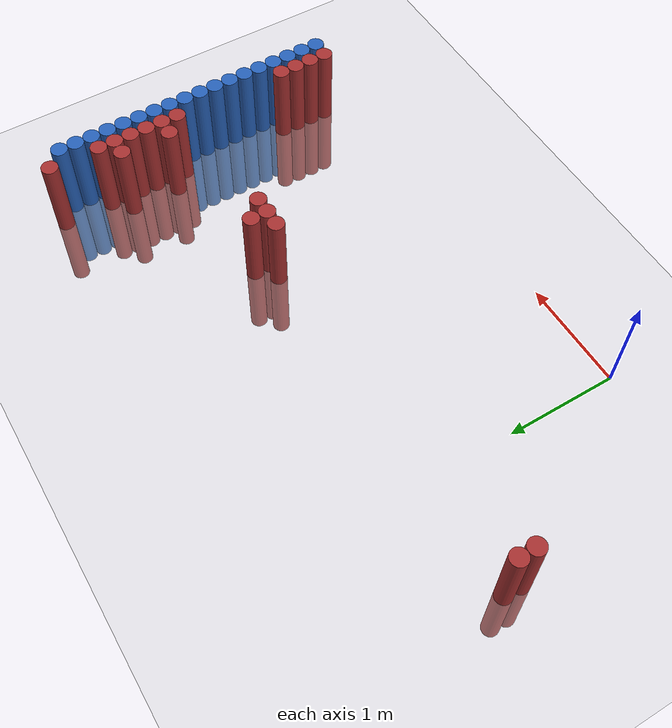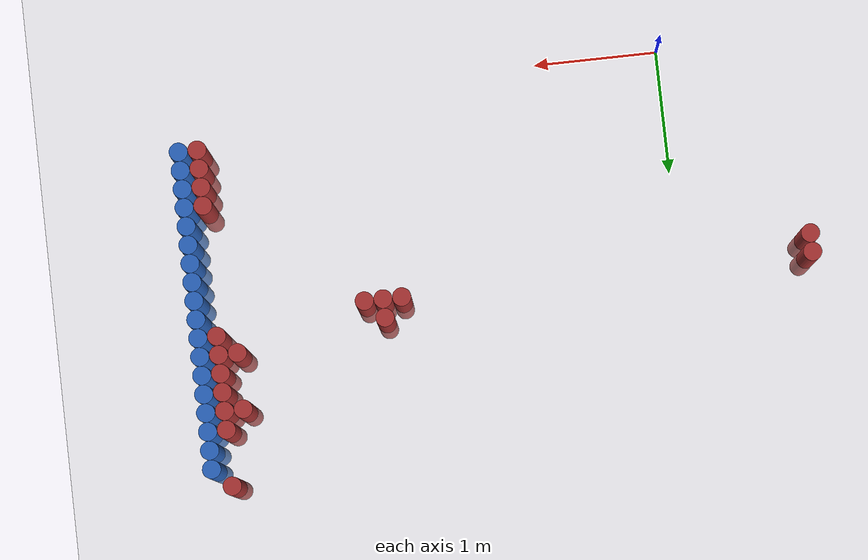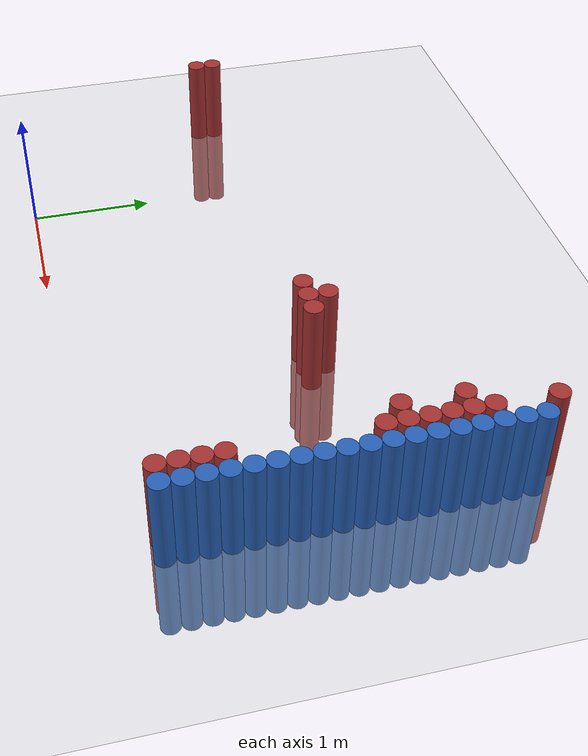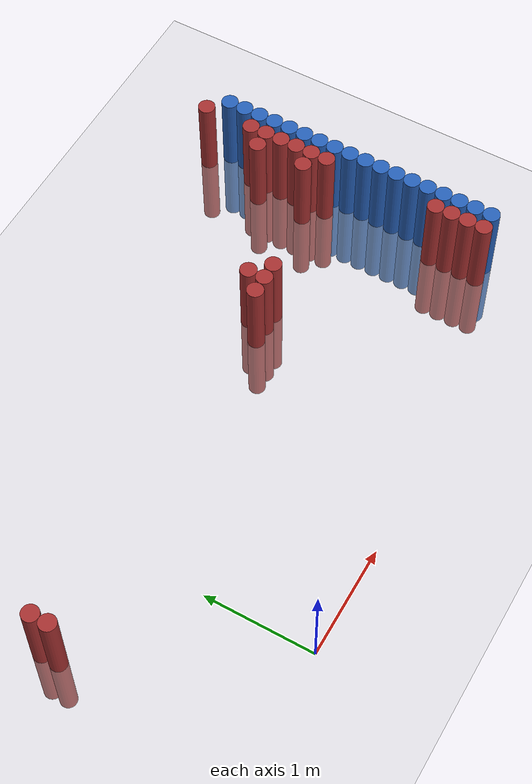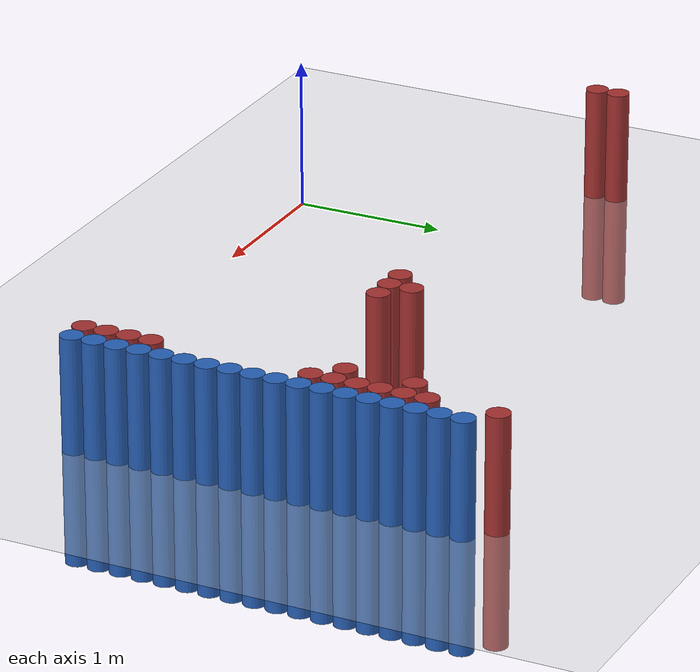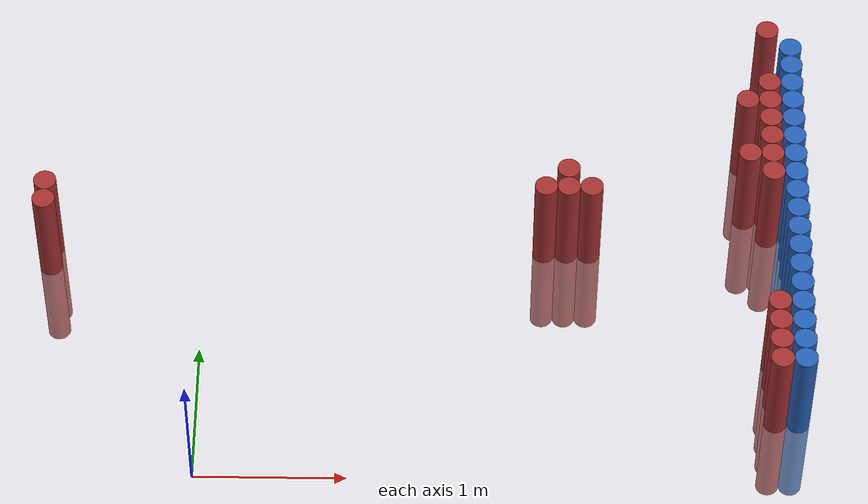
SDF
<sdf version="1.6">
 <world name="default">
  <model name="ground_plane">
   <static>1</static>
   <link name="link">
    <collision name="collision">
     <geometry><plane><normal>0 0 1</normal><size>100 100</size></plane></geometry>
     <surface><friction><ode><mu>100</mu><mu2>50</mu2></ode></friction></surface>
    </collision>
    <visual name="visual">
     <cast_shadows>0</cast_shadows>
     <geometry><plane><normal>0 0 1</normal><size>100 100</size></plane></geometry>
     <material>
      <script><uri>file://media/materials/scripts/gazebo.material</uri><name>Gazebo/Grey</name></script>
     </material>
    </visual>
   </link>
  </model>
  <model name="unit_cylinder_122">
   <static>1</static>
   <pose>3.925000 0.625000 0.000000 0.000000 0.000000 0.000000</pose>
   <link name="link">
    <inertial>
     <mass>1</mass>
     <inertia><ixx>0.145833</ixx><ixy>0</ixy><ixz>0</ixz><iyy>0.145833</iyy><iyz>0</iyz><izz>0.125</izz></inertia>
    </inertial>
    <collision name="collision">
     <geometry><cylinder><radius>0.075000</radius><length>1.5</length></cylinder></geometry>
    </collision>
    <visual name="visual">
     <geometry><cylinder><radius>0.075000</radius><length>1.5</length></cylinder></geometry>
     <material>
      <ambient>0.152000 0.379000 0.720000 1</ambient>
      <diffuse>0.152000 0.379000 0.720000 1</diffuse>
     </material>
     <material>
      <script><name>Gazebo/Grey</name><uri>file://media/materials/scripts/gazebo.material</uri></script>
     </material>
    </visual>
   </link>
  </model>
  <model name="unit_cylinder_124">
   <static>1</static>
   <pose>3.925000 0.775000 0.000000 0.000000 0.000000 0.000000</pose>
   <link name="link">
    <inertial>
     <mass>1</mass>
     <inertia><ixx>0.145833</ixx><ixy>0</ixy><ixz>0</ixz><iyy>0.145833</iyy><iyz>0</iyz><izz>0.125</izz></inertia>
    </inertial>
    <collision name="collision">
     <geometry><cylinder><radius>0.075000</radius><length>1.5</length></cylinder></geometry>
    </collision>
    <visual name="visual">
     <geometry><cylinder><radius>0.075000</radius><length>1.5</length></cylinder></geometry>
     <material>
      <ambient>0.152000 0.379000 0.720000 1</ambient>
      <diffuse>0.152000 0.379000 0.720000 1</diffuse>
     </material>
     <material>
      <script><name>Gazebo/Grey</name><uri>file://media/materials/scripts/gazebo.material</uri></script>
     </material>
    </visual>
   </link>
  </model>
  <model name="unit_cylinder_126">
   <static>1</static>
   <pose>3.925000 0.925000 0.000000 0.000000 0.000000 0.000000</pose>
   <link name="link">
    <inertial>
     <mass>1</mass>
     <inertia><ixx>0.145833</ixx><ixy>0</ixy><ixz>0</ixz><iyy>0.145833</iyy><iyz>0</iyz><izz>0.125</izz></inertia>
    </inertial>
    <collision name="collision">
     <geometry><cylinder><radius>0.075000</radius><length>1.5</length></cylinder></geometry>
    </collision>
    <visual name="visual">
     <geometry><cylinder><radius>0.075000</radius><length>1.5</length></cylinder></geometry>
     <material>
      <ambient>0.152000 0.379000 0.720000 1</ambient>
      <diffuse>0.152000 0.379000 0.720000 1</diffuse>
     </material>
     <material>
      <script><name>Gazebo/Grey</name><uri>file://media/materials/scripts/gazebo.material</uri></script>
     </material>
    </visual>
   </link>
  </model>
  <model name="unit_cylinder_128">
   <static>1</static>
   <pose>3.925000 1.075000 0.000000 0.000000 0.000000 0.000000</pose>
   <link name="link">
    <inertial>
     <mass>1</mass>
     <inertia><ixx>0.145833</ixx><ixy>0</ixy><ixz>0</ixz><iyy>0.145833</iyy><iyz>0</iyz><izz>0.125</izz></inertia>
    </inertial>
    <collision name="collision">
     <geometry><cylinder><radius>0.075000</radius><length>1.5</length></cylinder></geometry>
    </collision>
    <visual name="visual">
     <geometry><cylinder><radius>0.075000</radius><length>1.5</length></cylinder></geometry>
     <material>
      <ambient>0.152000 0.379000 0.720000 1</ambient>
      <diffuse>0.152000 0.379000 0.720000 1</diffuse>
     </material>
     <material>
      <script><name>Gazebo/Grey</name><uri>file://media/materials/scripts/gazebo.material</uri></script>
     </material>
    </visual>
   </link>
  </model>
  <model name="unit_cylinder_130">
   <static>1</static>
   <pose>3.925000 1.225000 0.000000 0.000000 0.000000 0.000000</pose>
   <link name="link">
    <inertial>
     <mass>1</mass>
     <inertia><ixx>0.145833</ixx><ixy>0</ixy><ixz>0</ixz><iyy>0.145833</iyy><iyz>0</iyz><izz>0.125</izz></inertia>
    </inertial>
    <collision name="collision">
     <geometry><cylinder><radius>0.075000</radius><length>1.5</length></cylinder></geometry>
    </collision>
    <visual name="visual">
     <geometry><cylinder><radius>0.075000</radius><length>1.5</length></cylinder></geometry>
     <material>
      <ambient>0.152000 0.379000 0.720000 1</ambient>
      <diffuse>0.152000 0.379000 0.720000 1</diffuse>
     </material>
     <material>
      <script><name>Gazebo/Grey</name><uri>file://media/materials/scripts/gazebo.material</uri></script>
     </material>
    </visual>
   </link>
  </model>
  <model name="unit_cylinder_132">
   <static>1</static>
   <pose>3.925000 1.375000 0.000000 0.000000 0.000000 0.000000</pose>
   <link name="link">
    <inertial>
     <mass>1</mass>
     <inertia><ixx>0.145833</ixx><ixy>0</ixy><ixz>0</ixz><iyy>0.145833</iyy><iyz>0</iyz><izz>0.125</izz></inertia>
    </inertial>
    <collision name="collision">
     <geometry><cylinder><radius>0.075000</radius><length>1.5</length></cylinder></geometry>
    </collision>
    <visual name="visual">
     <geometry><cylinder><radius>0.075000</radius><length>1.5</length></cylinder></geometry>
     <material>
      <ambient>0.152000 0.379000 0.720000 1</ambient>
      <diffuse>0.152000 0.379000 0.720000 1</diffuse>
     </material>
     <material>
      <script><name>Gazebo/Grey</name><uri>file://media/materials/scripts/gazebo.material</uri></script>
     </material>
    </visual>
   </link>
  </model>
  <model name="unit_cylinder_134">
   <static>1</static>
   <pose>3.925000 1.525000 0.000000 0.000000 0.000000 0.000000</pose>
   <link name="link">
    <inertial>
     <mass>1</mass>
     <inertia><ixx>0.145833</ixx><ixy>0</ixy><ixz>0</ixz><iyy>0.145833</iyy><iyz>0</iyz><izz>0.125</izz></inertia>
    </inertial>
    <collision name="collision">
     <geometry><cylinder><radius>0.075000</radius><length>1.5</length></cylinder></geometry>
    </collision>
    <visual name="visual">
     <geometry><cylinder><radius>0.075000</radius><length>1.5</length></cylinder></geometry>
     <material>
      <ambient>0.152000 0.379000 0.720000 1</ambient>
      <diffuse>0.152000 0.379000 0.720000 1</diffuse>
     </material>
     <material>
      <script><name>Gazebo/Grey</name><uri>file://media/materials/scripts/gazebo.material</uri></script>
     </material>
    </visual>
   </link>
  </model>
  <model name="unit_cylinder_136">
   <static>1</static>
   <pose>3.925000 1.675000 0.000000 0.000000 0.000000 0.000000</pose>
   <link name="link">
    <inertial>
     <mass>1</mass>
     <inertia><ixx>0.145833</ixx><ixy>0</ixy><ixz>0</ixz><iyy>0.145833</iyy><iyz>0</iyz><izz>0.125</izz></inertia>
    </inertial>
    <collision name="collision">
     <geometry><cylinder><radius>0.075000</radius><length>1.5</length></cylinder></geometry>
    </collision>
    <visual name="visual">
     <geometry><cylinder><radius>0.075000</radius><length>1.5</length></cylinder></geometry>
     <material>
      <ambient>0.152000 0.379000 0.720000 1</ambient>
      <diffuse>0.152000 0.379000 0.720000 1</diffuse>
     </material>
     <material>
      <script><name>Gazebo/Grey</name><uri>file://media/materials/scripts/gazebo.material</uri></script>
     </material>
    </visual>
   </link>
  </model>
  <model name="unit_cylinder_138">
   <static>1</static>
   <pose>3.925000 1.825000 0.000000 0.000000 0.000000 0.000000</pose>
   <link name="link">
    <inertial>
     <mass>1</mass>
     <inertia><ixx>0.145833</ixx><ixy>0</ixy><ixz>0</ixz><iyy>0.145833</iyy><iyz>0</iyz><izz>0.125</izz></inertia>
    </inertial>
    <collision name="collision">
     <geometry><cylinder><radius>0.075000</radius><length>1.5</length></cylinder></geometry>
    </collision>
    <visual name="visual">
     <geometry><cylinder><radius>0.075000</radius><length>1.5</length></cylinder></geometry>
     <material>
      <ambient>0.152000 0.379000 0.720000 1</ambient>
      <diffuse>0.152000 0.379000 0.720000 1</diffuse>
     </material>
     <material>
      <script><name>Gazebo/Grey</name><uri>file://media/materials/scripts/gazebo.material</uri></script>
     </material>
    </visual>
   </link>
  </model>
  <model name="unit_cylinder_140">
   <static>1</static>
   <pose>3.925000 1.975000 0.000000 0.000000 0.000000 0.000000</pose>
   <link name="link">
    <inertial>
     <mass>1</mass>
     <inertia><ixx>0.145833</ixx><ixy>0</ixy><ixz>0</ixz><iyy>0.145833</iyy><iyz>0</iyz><izz>0.125</izz></inertia>
    </inertial>
    <collision name="collision">
     <geometry><cylinder><radius>0.075000</radius><length>1.5</length></cylinder></geometry>
    </collision>
    <visual name="visual">
     <geometry><cylinder><radius>0.075000</radius><length>1.5</length></cylinder></geometry>
     <material>
      <ambient>0.152000 0.379000 0.720000 1</ambient>
      <diffuse>0.152000 0.379000 0.720000 1</diffuse>
     </material>
     <material>
      <script><name>Gazebo/Grey</name><uri>file://media/materials/scripts/gazebo.material</uri></script>
     </material>
    </visual>
   </link>
  </model>
  <model name="unit_cylinder_142">
   <static>1</static>
   <pose>3.925000 2.125000 0.000000 0.000000 0.000000 0.000000</pose>
   <link name="link">
    <inertial>
     <mass>1</mass>
     <inertia><ixx>0.145833</ixx><ixy>0</ixy><ixz>0</ixz><iyy>0.145833</iyy><iyz>0</iyz><izz>0.125</izz></inertia>
    </inertial>
    <collision name="collision">
     <geometry><cylinder><radius>0.075000</radius><length>1.5</length></cylinder></geometry>
    </collision>
    <visual name="visual">
     <geometry><cylinder><radius>0.075000</radius><length>1.5</length></cylinder></geometry>
     <material>
      <ambient>0.152000 0.379000 0.720000 1</ambient>
      <diffuse>0.152000 0.379000 0.720000 1</diffuse>
     </material>
     <material>
      <script><name>Gazebo/Grey</name><uri>file://media/materials/scripts/gazebo.material</uri></script>
     </material>
    </visual>
   </link>
  </model>
  <model name="unit_cylinder_144">
   <static>1</static>
   <pose>3.925000 2.275000 0.000000 0.000000 0.000000 0.000000</pose>
   <link name="link">
    <inertial>
     <mass>1</mass>
     <inertia><ixx>0.145833</ixx><ixy>0</ixy><ixz>0</ixz><iyy>0.145833</iyy><iyz>0</iyz><izz>0.125</izz></inertia>
    </inertial>
    <collision name="collision">
     <geometry><cylinder><radius>0.075000</radius><length>1.5</length></cylinder></geometry>
    </collision>
    <visual name="visual">
     <geometry><cylinder><radius>0.075000</radius><length>1.5</length></cylinder></geometry>
     <material>
      <ambient>0.152000 0.379000 0.720000 1</ambient>
      <diffuse>0.152000 0.379000 0.720000 1</diffuse>
     </material>
     <material>
      <script><name>Gazebo/Grey</name><uri>file://media/materials/scripts/gazebo.material</uri></script>
     </material>
    </visual>
   </link>
  </model>
  <model name="unit_cylinder_146">
   <static>1</static>
   <pose>3.925000 2.425000 0.000000 0.000000 0.000000 0.000000</pose>
   <link name="link">
    <inertial>
     <mass>1</mass>
     <inertia><ixx>0.145833</ixx><ixy>0</ixy><ixz>0</ixz><iyy>0.145833</iyy><iyz>0</iyz><izz>0.125</izz></inertia>
    </inertial>
    <collision name="collision">
     <geometry><cylinder><radius>0.075000</radius><length>1.5</length></cylinder></geometry>
    </collision>
    <visual name="visual">
     <geometry><cylinder><radius>0.075000</radius><length>1.5</length></cylinder></geometry>
     <material>
      <ambient>0.152000 0.379000 0.720000 1</ambient>
      <diffuse>0.152000 0.379000 0.720000 1</diffuse>
     </material>
     <material>
      <script><name>Gazebo/Grey</name><uri>file://media/materials/scripts/gazebo.material</uri></script>
     </material>
    </visual>
   </link>
  </model>
  <model name="unit_cylinder_148">
   <static>1</static>
   <pose>3.925000 2.575000 0.000000 0.000000 0.000000 0.000000</pose>
   <link name="link">
    <inertial>
     <mass>1</mass>
     <inertia><ixx>0.145833</ixx><ixy>0</ixy><ixz>0</ixz><iyy>0.145833</iyy><iyz>0</iyz><izz>0.125</izz></inertia>
    </inertial>
    <collision name="collision">
     <geometry><cylinder><radius>0.075000</radius><length>1.5</length></cylinder></geometry>
    </collision>
    <visual name="visual">
     <geometry><cylinder><radius>0.075000</radius><length>1.5</length></cylinder></geometry>
     <material>
      <ambient>0.152000 0.379000 0.720000 1</ambient>
      <diffuse>0.152000 0.379000 0.720000 1</diffuse>
     </material>
     <material>
      <script><name>Gazebo/Grey</name><uri>file://media/materials/scripts/gazebo.material</uri></script>
     </material>
    </visual>
   </link>
  </model>
  <model name="unit_cylinder_150">
   <static>1</static>
   <pose>3.925000 2.725000 0.000000 0.000000 0.000000 0.000000</pose>
   <link name="link">
    <inertial>
     <mass>1</mass>
     <inertia><ixx>0.145833</ixx><ixy>0</ixy><ixz>0</ixz><iyy>0.145833</iyy><iyz>0</iyz><izz>0.125</izz></inertia>
    </inertial>
    <collision name="collision">
     <geometry><cylinder><radius>0.075000</radius><length>1.5</length></cylinder></geometry>
    </collision>
    <visual name="visual">
     <geometry><cylinder><radius>0.075000</radius><length>1.5</length></cylinder></geometry>
     <material>
      <ambient>0.152000 0.379000 0.720000 1</ambient>
      <diffuse>0.152000 0.379000 0.720000 1</diffuse>
     </material>
     <material>
      <script><name>Gazebo/Grey</name><uri>file://media/materials/scripts/gazebo.material</uri></script>
     </material>
    </visual>
   </link>
  </model>
  <model name="unit_cylinder_152">
   <static>1</static>
   <pose>3.925000 2.875000 0.000000 0.000000 0.000000 0.000000</pose>
   <link name="link">
    <inertial>
     <mass>1</mass>
     <inertia><ixx>0.145833</ixx><ixy>0</ixy><ixz>0</ixz><iyy>0.145833</iyy><iyz>0</iyz><izz>0.125</izz></inertia>
    </inertial>
    <collision name="collision">
     <geometry><cylinder><radius>0.075000</radius><length>1.5</length></cylinder></geometry>
    </collision>
    <visual name="visual">
     <geometry><cylinder><radius>0.075000</radius><length>1.5</length></cylinder></geometry>
     <material>
      <ambient>0.152000 0.379000 0.720000 1</ambient>
      <diffuse>0.152000 0.379000 0.720000 1</diffuse>
     </material>
     <material>
      <script><name>Gazebo/Grey</name><uri>file://media/materials/scripts/gazebo.material</uri></script>
     </material>
    </visual>
   </link>
  </model>
  <model name="unit_cylinder_154">
   <static>1</static>
   <pose>3.925000 3.025000 0.000000 0.000000 0.000000 0.000000</pose>
   <link name="link">
    <inertial>
     <mass>1</mass>
     <inertia><ixx>0.145833</ixx><ixy>0</ixy><ixz>0</ixz><iyy>0.145833</iyy><iyz>0</iyz><izz>0.125</izz></inertia>
    </inertial>
    <collision name="collision">
     <geometry><cylinder><radius>0.075000</radius><length>1.5</length></cylinder></geometry>
    </collision>
    <visual name="visual">
     <geometry><cylinder><radius>0.075000</radius><length>1.5</length></cylinder></geometry>
     <material>
      <ambient>0.152000 0.379000 0.720000 1</ambient>
      <diffuse>0.152000 0.379000 0.720000 1</diffuse>
     </material>
     <material>
      <script><name>Gazebo/Grey</name><uri>file://media/materials/scripts/gazebo.material</uri></script>
     </material>
    </visual>
   </link>
  </model>
  <model name="unit_cylinder_292">
   <static>1</static>
   <pose>-1.025000 1.675000 0.000000 0.000000 0.000000 0.000000</pose>
   <link name="link">
    <inertial>
     <mass>1</mass>
     <inertia><ixx>0.145833</ixx><ixy>0</ixy><ixz>0</ixz><iyy>0.145833</iyy><iyz>0</iyz><izz>0.125</izz></inertia>
    </inertial>
    <collision name="collision">
     <geometry><cylinder><radius>0.075000</radius><length>1.5</length></cylinder></geometry>
    </collision>
    <visual name="visual">
     <geometry><cylinder><radius>0.075000</radius><length>1.5</length></cylinder></geometry>
     <material>
      <ambient>0.648000 0.192000 0.192000 1</ambient>
      <diffuse>0.648000 0.192000 0.192000 1</diffuse>
     </material>
     <material>
      <script><name>Gazebo/Grey</name><uri>file://media/materials/scripts/gazebo.material</uri></script>
     </material>
    </visual>
   </link>
  </model>
  <model name="unit_cylinder_293">
   <static>1</static>
   <pose>-1.025000 1.825000 0.000000 0.000000 0.000000 0.000000</pose>
   <link name="link">
    <inertial>
     <mass>1</mass>
     <inertia><ixx>0.145833</ixx><ixy>0</ixy><ixz>0</ixz><iyy>0.145833</iyy><iyz>0</iyz><izz>0.125</izz></inertia>
    </inertial>
    <collision name="collision">
     <geometry><cylinder><radius>0.075000</radius><length>1.5</length></cylinder></geometry>
    </collision>
    <visual name="visual">
     <geometry><cylinder><radius>0.075000</radius><length>1.5</length></cylinder></geometry>
     <material>
      <ambient>0.648000 0.192000 0.192000 1</ambient>
      <diffuse>0.648000 0.192000 0.192000 1</diffuse>
     </material>
     <material>
      <script><name>Gazebo/Grey</name><uri>file://media/materials/scripts/gazebo.material</uri></script>
     </material>
    </visual>
   </link>
  </model>
  <model name="unit_cylinder_304">
   <static>1</static>
   <pose>2.275000 1.825000 0.000000 0.000000 0.000000 0.000000</pose>
   <link name="link">
    <inertial>
     <mass>1</mass>
     <inertia><ixx>0.145833</ixx><ixy>0</ixy><ixz>0</ixz><iyy>0.145833</iyy><iyz>0</iyz><izz>0.125</izz></inertia>
    </inertial>
    <collision name="collision">
     <geometry><cylinder><radius>0.075000</radius><length>1.5</length></cylinder></geometry>
    </collision>
    <visual name="visual">
     <geometry><cylinder><radius>0.075000</radius><length>1.5</length></cylinder></geometry>
     <material>
      <ambient>0.648000 0.192000 0.192000 1</ambient>
      <diffuse>0.648000 0.192000 0.192000 1</diffuse>
     </material>
     <material>
      <script><name>Gazebo/Grey</name><uri>file://media/materials/scripts/gazebo.material</uri></script>
     </material>
    </visual>
   </link>
  </model>
  <model name="unit_cylinder_305">
   <static>1</static>
   <pose>2.425000 1.825000 0.000000 0.000000 0.000000 0.000000</pose>
   <link name="link">
    <inertial>
     <mass>1</mass>
     <inertia><ixx>0.145833</ixx><ixy>0</ixy><ixz>0</ixz><iyy>0.145833</iyy><iyz>0</iyz><izz>0.125</izz></inertia>
    </inertial>
    <collision name="collision">
     <geometry><cylinder><radius>0.075000</radius><length>1.5</length></cylinder></geometry>
    </collision>
    <visual name="visual">
     <geometry><cylinder><radius>0.075000</radius><length>1.5</length></cylinder></geometry>
     <material>
      <ambient>0.648000 0.192000 0.192000 1</ambient>
      <diffuse>0.648000 0.192000 0.192000 1</diffuse>
     </material>
     <material>
      <script><name>Gazebo/Grey</name><uri>file://media/materials/scripts/gazebo.material</uri></script>
     </material>
    </visual>
   </link>
  </model>
  <model name="unit_cylinder_306">
   <static>1</static>
   <pose>2.425000 1.975000 0.000000 0.000000 0.000000 0.000000</pose>
   <link name="link">
    <inertial>
     <mass>1</mass>
     <inertia><ixx>0.145833</ixx><ixy>0</ixy><ixz>0</ixz><iyy>0.145833</iyy><iyz>0</iyz><izz>0.125</izz></inertia>
    </inertial>
    <collision name="collision">
     <geometry><cylinder><radius>0.075000</radius><length>1.5</length></cylinder></geometry>
    </collision>
    <visual name="visual">
     <geometry><cylinder><radius>0.075000</radius><length>1.5</length></cylinder></geometry>
     <material>
      <ambient>0.648000 0.192000 0.192000 1</ambient>
      <diffuse>0.648000 0.192000 0.192000 1</diffuse>
     </material>
     <material>
      <script><name>Gazebo/Grey</name><uri>file://media/materials/scripts/gazebo.material</uri></script>
     </material>
    </visual>
   </link>
  </model>
  <model name="unit_cylinder_307">
   <static>1</static>
   <pose>2.575000 1.825000 0.000000 0.000000 0.000000 0.000000</pose>
   <link name="link">
    <inertial>
     <mass>1</mass>
     <inertia><ixx>0.145833</ixx><ixy>0</ixy><ixz>0</ixz><iyy>0.145833</iyy><iyz>0</iyz><izz>0.125</izz></inertia>
    </inertial>
    <collision name="collision">
     <geometry><cylinder><radius>0.075000</radius><length>1.5</length></cylinder></geometry>
    </collision>
    <visual name="visual">
     <geometry><cylinder><radius>0.075000</radius><length>1.5</length></cylinder></geometry>
     <material>
      <ambient>0.648000 0.192000 0.192000 1</ambient>
      <diffuse>0.648000 0.192000 0.192000 1</diffuse>
     </material>
     <material>
      <script><name>Gazebo/Grey</name><uri>file://media/materials/scripts/gazebo.material</uri></script>
     </material>
    </visual>
   </link>
  </model>
  <model name="unit_cylinder_316">
   <static>1</static>
   <pose>3.625000 2.125000 0.000000 0.000000 0.000000 0.000000</pose>
   <link name="link">
    <inertial>
     <mass>1</mass>
     <inertia><ixx>0.145833</ixx><ixy>0</ixy><ixz>0</ixz><iyy>0.145833</iyy><iyz>0</iyz><izz>0.125</izz></inertia>
    </inertial>
    <collision name="collision">
     <geometry><cylinder><radius>0.075000</radius><length>1.5</length></cylinder></geometry>
    </collision>
    <visual name="visual">
     <geometry><cylinder><radius>0.075000</radius><length>1.5</length></cylinder></geometry>
     <material>
      <ambient>0.648000 0.192000 0.192000 1</ambient>
      <diffuse>0.648000 0.192000 0.192000 1</diffuse>
     </material>
     <material>
      <script><name>Gazebo/Grey</name><uri>file://media/materials/scripts/gazebo.material</uri></script>
     </material>
    </visual>
   </link>
  </model>
  <model name="unit_cylinder_317">
   <static>1</static>
   <pose>3.625000 2.575000 0.000000 0.000000 0.000000 0.000000</pose>
   <link name="link">
    <inertial>
     <mass>1</mass>
     <inertia><ixx>0.145833</ixx><ixy>0</ixy><ixz>0</ixz><iyy>0.145833</iyy><iyz>0</iyz><izz>0.125</izz></inertia>
    </inertial>
    <collision name="collision">
     <geometry><cylinder><radius>0.075000</radius><length>1.5</length></cylinder></geometry>
    </collision>
    <visual name="visual">
     <geometry><cylinder><radius>0.075000</radius><length>1.5</length></cylinder></geometry>
     <material>
      <ambient>0.648000 0.192000 0.192000 1</ambient>
      <diffuse>0.648000 0.192000 0.192000 1</diffuse>
     </material>
     <material>
      <script><name>Gazebo/Grey</name><uri>file://media/materials/scripts/gazebo.material</uri></script>
     </material>
    </visual>
   </link>
  </model>
  <model name="unit_cylinder_318">
   <static>1</static>
   <pose>3.775000 0.475000 0.000000 0.000000 0.000000 0.000000</pose>
   <link name="link">
    <inertial>
     <mass>1</mass>
     <inertia><ixx>0.145833</ixx><ixy>0</ixy><ixz>0</ixz><iyy>0.145833</iyy><iyz>0</iyz><izz>0.125</izz></inertia>
    </inertial>
    <collision name="collision">
     <geometry><cylinder><radius>0.075000</radius><length>1.5</length></cylinder></geometry>
    </collision>
    <visual name="visual">
     <geometry><cylinder><radius>0.075000</radius><length>1.5</length></cylinder></geometry>
     <material>
      <ambient>0.648000 0.192000 0.192000 1</ambient>
      <diffuse>0.648000 0.192000 0.192000 1</diffuse>
     </material>
     <material>
      <script><name>Gazebo/Grey</name><uri>file://media/materials/scripts/gazebo.material</uri></script>
     </material>
    </visual>
   </link>
  </model>
  <model name="unit_cylinder_319">
   <static>1</static>
   <pose>3.775000 0.625000 0.000000 0.000000 0.000000 0.000000</pose>
   <link name="link">
    <inertial>
     <mass>1</mass>
     <inertia><ixx>0.145833</ixx><ixy>0</ixy><ixz>0</ixz><iyy>0.145833</iyy><iyz>0</iyz><izz>0.125</izz></inertia>
    </inertial>
    <collision name="collision">
     <geometry><cylinder><radius>0.075000</radius><length>1.5</length></cylinder></geometry>
    </collision>
    <visual name="visual">
     <geometry><cylinder><radius>0.075000</radius><length>1.5</length></cylinder></geometry>
     <material>
      <ambient>0.648000 0.192000 0.192000 1</ambient>
      <diffuse>0.648000 0.192000 0.192000 1</diffuse>
     </material>
     <material>
      <script><name>Gazebo/Grey</name><uri>file://media/materials/scripts/gazebo.material</uri></script>
     </material>
    </visual>
   </link>
  </model>
  <model name="unit_cylinder_320">
   <static>1</static>
   <pose>3.775000 0.775000 0.000000 0.000000 0.000000 0.000000</pose>
   <link name="link">
    <inertial>
     <mass>1</mass>
     <inertia><ixx>0.145833</ixx><ixy>0</ixy><ixz>0</ixz><iyy>0.145833</iyy><iyz>0</iyz><izz>0.125</izz></inertia>
    </inertial>
    <collision name="collision">
     <geometry><cylinder><radius>0.075000</radius><length>1.5</length></cylinder></geometry>
    </collision>
    <visual name="visual">
     <geometry><cylinder><radius>0.075000</radius><length>1.5</length></cylinder></geometry>
     <material>
      <ambient>0.648000 0.192000 0.192000 1</ambient>
      <diffuse>0.648000 0.192000 0.192000 1</diffuse>
     </material>
     <material>
      <script><name>Gazebo/Grey</name><uri>file://media/materials/scripts/gazebo.material</uri></script>
     </material>
    </visual>
   </link>
  </model>
  <model name="unit_cylinder_321">
   <static>1</static>
   <pose>3.775000 0.925000 0.000000 0.000000 0.000000 0.000000</pose>
   <link name="link">
    <inertial>
     <mass>1</mass>
     <inertia><ixx>0.145833</ixx><ixy>0</ixy><ixz>0</ixz><iyy>0.145833</iyy><iyz>0</iyz><izz>0.125</izz></inertia>
    </inertial>
    <collision name="collision">
     <geometry><cylinder><radius>0.075000</radius><length>1.5</length></cylinder></geometry>
    </collision>
    <visual name="visual">
     <geometry><cylinder><radius>0.075000</radius><length>1.5</length></cylinder></geometry>
     <material>
      <ambient>0.648000 0.192000 0.192000 1</ambient>
      <diffuse>0.648000 0.192000 0.192000 1</diffuse>
     </material>
     <material>
      <script><name>Gazebo/Grey</name><uri>file://media/materials/scripts/gazebo.material</uri></script>
     </material>
    </visual>
   </link>
  </model>
  <model name="unit_cylinder_322">
   <static>1</static>
   <pose>3.775000 1.975000 0.000000 0.000000 0.000000 0.000000</pose>
   <link name="link">
    <inertial>
     <mass>1</mass>
     <inertia><ixx>0.145833</ixx><ixy>0</ixy><ixz>0</ixz><iyy>0.145833</iyy><iyz>0</iyz><izz>0.125</izz></inertia>
    </inertial>
    <collision name="collision">
     <geometry><cylinder><radius>0.075000</radius><length>1.5</length></cylinder></geometry>
    </collision>
    <visual name="visual">
     <geometry><cylinder><radius>0.075000</radius><length>1.5</length></cylinder></geometry>
     <material>
      <ambient>0.648000 0.192000 0.192000 1</ambient>
      <diffuse>0.648000 0.192000 0.192000 1</diffuse>
     </material>
     <material>
      <script><name>Gazebo/Grey</name><uri>file://media/materials/scripts/gazebo.material</uri></script>
     </material>
    </visual>
   </link>
  </model>
  <model name="unit_cylinder_323">
   <static>1</static>
   <pose>3.775000 2.125000 0.000000 0.000000 0.000000 0.000000</pose>
   <link name="link">
    <inertial>
     <mass>1</mass>
     <inertia><ixx>0.145833</ixx><ixy>0</ixy><ixz>0</ixz><iyy>0.145833</iyy><iyz>0</iyz><izz>0.125</izz></inertia>
    </inertial>
    <collision name="collision">
     <geometry><cylinder><radius>0.075000</radius><length>1.5</length></cylinder></geometry>
    </collision>
    <visual name="visual">
     <geometry><cylinder><radius>0.075000</radius><length>1.5</length></cylinder></geometry>
     <material>
      <ambient>0.648000 0.192000 0.192000 1</ambient>
      <diffuse>0.648000 0.192000 0.192000 1</diffuse>
     </material>
     <material>
      <script><name>Gazebo/Grey</name><uri>file://media/materials/scripts/gazebo.material</uri></script>
     </material>
    </visual>
   </link>
  </model>
  <model name="unit_cylinder_324">
   <static>1</static>
   <pose>3.775000 2.275000 0.000000 0.000000 0.000000 0.000000</pose>
   <link name="link">
    <inertial>
     <mass>1</mass>
     <inertia><ixx>0.145833</ixx><ixy>0</ixy><ixz>0</ixz><iyy>0.145833</iyy><iyz>0</iyz><izz>0.125</izz></inertia>
    </inertial>
    <collision name="collision">
     <geometry><cylinder><radius>0.075000</radius><length>1.5</length></cylinder></geometry>
    </collision>
    <visual name="visual">
     <geometry><cylinder><radius>0.075000</radius><length>1.5</length></cylinder></geometry>
     <material>
      <ambient>0.648000 0.192000 0.192000 1</ambient>
      <diffuse>0.648000 0.192000 0.192000 1</diffuse>
     </material>
     <material>
      <script><name>Gazebo/Grey</name><uri>file://media/materials/scripts/gazebo.material</uri></script>
     </material>
    </visual>
   </link>
  </model>
  <model name="unit_cylinder_325">
   <static>1</static>
   <pose>3.775000 2.425000 0.000000 0.000000 0.000000 0.000000</pose>
   <link name="link">
    <inertial>
     <mass>1</mass>
     <inertia><ixx>0.145833</ixx><ixy>0</ixy><ixz>0</ixz><iyy>0.145833</iyy><iyz>0</iyz><izz>0.125</izz></inertia>
    </inertial>
    <collision name="collision">
     <geometry><cylinder><radius>0.075000</radius><length>1.5</length></cylinder></geometry>
    </collision>
    <visual name="visual">
     <geometry><cylinder><radius>0.075000</radius><length>1.5</length></cylinder></geometry>
     <material>
      <ambient>0.648000 0.192000 0.192000 1</ambient>
      <diffuse>0.648000 0.192000 0.192000 1</diffuse>
     </material>
     <material>
      <script><name>Gazebo/Grey</name><uri>file://media/materials/scripts/gazebo.material</uri></script>
     </material>
    </visual>
   </link>
  </model>
  <model name="unit_cylinder_326">
   <static>1</static>
   <pose>3.775000 2.575000 0.000000 0.000000 0.000000 0.000000</pose>
   <link name="link">
    <inertial>
     <mass>1</mass>
     <inertia><ixx>0.145833</ixx><ixy>0</ixy><ixz>0</ixz><iyy>0.145833</iyy><iyz>0</iyz><izz>0.125</izz></inertia>
    </inertial>
    <collision name="collision">
     <geometry><cylinder><radius>0.075000</radius><length>1.5</length></cylinder></geometry>
    </collision>
    <visual name="visual">
     <geometry><cylinder><radius>0.075000</radius><length>1.5</length></cylinder></geometry>
     <material>
      <ambient>0.648000 0.192000 0.192000 1</ambient>
      <diffuse>0.648000 0.192000 0.192000 1</diffuse>
     </material>
     <material>
      <script><name>Gazebo/Grey</name><uri>file://media/materials/scripts/gazebo.material</uri></script>
     </material>
    </visual>
   </link>
  </model>
  <model name="unit_cylinder_327">
   <static>1</static>
   <pose>3.775000 2.725000 0.000000 0.000000 0.000000 0.000000</pose>
   <link name="link">
    <inertial>
     <mass>1</mass>
     <inertia><ixx>0.145833</ixx><ixy>0</ixy><ixz>0</ixz><iyy>0.145833</iyy><iyz>0</iyz><izz>0.125</izz></inertia>
    </inertial>
    <collision name="collision">
     <geometry><cylinder><radius>0.075000</radius><length>1.5</length></cylinder></geometry>
    </collision>
    <visual name="visual">
     <geometry><cylinder><radius>0.075000</radius><length>1.5</length></cylinder></geometry>
     <material>
      <ambient>0.648000 0.192000 0.192000 1</ambient>
      <diffuse>0.648000 0.192000 0.192000 1</diffuse>
     </material>
     <material>
      <script><name>Gazebo/Grey</name><uri>file://media/materials/scripts/gazebo.material</uri></script>
     </material>
    </visual>
   </link>
  </model>
  <model name="unit_cylinder_328">
   <static>1</static>
   <pose>3.775000 3.175000 0.000000 0.000000 0.000000 0.000000</pose>
   <link name="link">
    <inertial>
     <mass>1</mass>
     <inertia><ixx>0.145833</ixx><ixy>0</ixy><ixz>0</ixz><iyy>0.145833</iyy><iyz>0</iyz><izz>0.125</izz></inertia>
    </inertial>
    <collision name="collision">
     <geometry><cylinder><radius>0.075000</radius><length>1.5</length></cylinder></geometry>
    </collision>
    <visual name="visual">
     <geometry><cylinder><radius>0.075000</radius><length>1.5</length></cylinder></geometry>
     <material>
      <ambient>0.648000 0.192000 0.192000 1</ambient>
      <diffuse>0.648000 0.192000 0.192000 1</diffuse>
     </material>
     <material>
      <script><name>Gazebo/Grey</name><uri>file://media/materials/scripts/gazebo.material</uri></script>
     </material>
    </visual>
   </link>
  </model>
  <model name="unit_cylinder_347">
   <static>1</static>
   <pose>3.925000 0.475000 0.000000 0.000000 0.000000 0.000000</pose>
   <link name="link">
    <inertial>
     <mass>1</mass>
     <inertia><ixx>0.145833</ixx><ixy>0</ixy><ixz>0</ixz><iyy>0.145833</iyy><iyz>0</iyz><izz>0.125</izz></inertia>
    </inertial>
    <collision name="collision">
     <geometry><cylinder><radius>0.075000</radius><length>1.5</length></cylinder></geometry>
    </collision>
    <visual name="visual">
     <geometry><cylinder><radius>0.075000</radius><length>1.5</length></cylinder></geometry>
     <material>
      <ambient>0.152000 0.379000 0.720000 1</ambient>
      <diffuse>0.152000 0.379000 0.720000 1</diffuse>
     </material>
     <material>
      <script><name>Gazebo/Grey</name><uri>file://media/materials/scripts/gazebo.material</uri></script>
     </material>
    </visual>
   </link>
  </model>
  <model name="unit_cylinder_348">
   <static>1</static>
   <pose>3.925000 0.625000 0.000000 0.000000 0.000000 0.000000</pose>
   <link name="link">
    <inertial>
     <mass>1</mass>
     <inertia><ixx>0.145833</ixx><ixy>0</ixy><ixz>0</ixz><iyy>0.145833</iyy><iyz>0</iyz><izz>0.125</izz></inertia>
    </inertial>
    <collision name="collision">
     <geometry><cylinder><radius>0.075000</radius><length>1.5</length></cylinder></geometry>
    </collision>
    <visual name="visual">
     <geometry><cylinder><radius>0.075000</radius><length>1.5</length></cylinder></geometry>
     <material>
      <ambient>0.152000 0.379000 0.720000 1</ambient>
      <diffuse>0.152000 0.379000 0.720000 1</diffuse>
     </material>
     <material>
      <script><name>Gazebo/Grey</name><uri>file://media/materials/scripts/gazebo.material</uri></script>
     </material>
    </visual>
   </link>
  </model>
  <model name="unit_cylinder_349">
   <static>1</static>
   <pose>3.925000 0.775000 0.000000 0.000000 0.000000 0.000000</pose>
   <link name="link">
    <inertial>
     <mass>1</mass>
     <inertia><ixx>0.145833</ixx><ixy>0</ixy><ixz>0</ixz><iyy>0.145833</iyy><iyz>0</iyz><izz>0.125</izz></inertia>
    </inertial>
    <collision name="collision">
     <geometry><cylinder><radius>0.075000</radius><length>1.5</length></cylinder></geometry>
    </collision>
    <visual name="visual">
     <geometry><cylinder><radius>0.075000</radius><length>1.5</length></cylinder></geometry>
     <material>
      <ambient>0.152000 0.379000 0.720000 1</ambient>
      <diffuse>0.152000 0.379000 0.720000 1</diffuse>
     </material>
     <material>
      <script><name>Gazebo/Grey</name><uri>file://media/materials/scripts/gazebo.material</uri></script>
     </material>
    </visual>
   </link>
  </model>
  <model name="unit_cylinder_350">
   <static>1</static>
   <pose>3.925000 0.925000 0.000000 0.000000 0.000000 0.000000</pose>
   <link name="link">
    <inertial>
     <mass>1</mass>
     <inertia><ixx>0.145833</ixx><ixy>0</ixy><ixz>0</ixz><iyy>0.145833</iyy><iyz>0</iyz><izz>0.125</izz></inertia>
    </inertial>
    <collision name="collision">
     <geometry><cylinder><radius>0.075000</radius><length>1.5</length></cylinder></geometry>
    </collision>
    <visual name="visual">
     <geometry><cylinder><radius>0.075000</radius><length>1.5</length></cylinder></geometry>
     <material>
      <ambient>0.152000 0.379000 0.720000 1</ambient>
      <diffuse>0.152000 0.379000 0.720000 1</diffuse>
     </material>
     <material>
      <script><name>Gazebo/Grey</name><uri>file://media/materials/scripts/gazebo.material</uri></script>
     </material>
    </visual>
   </link>
  </model>
  <model name="unit_cylinder_351">
   <static>1</static>
   <pose>3.925000 1.075000 0.000000 0.000000 0.000000 0.000000</pose>
   <link name="link">
    <inertial>
     <mass>1</mass>
     <inertia><ixx>0.145833</ixx><ixy>0</ixy><ixz>0</ixz><iyy>0.145833</iyy><iyz>0</iyz><izz>0.125</izz></inertia>
    </inertial>
    <collision name="collision">
     <geometry><cylinder><radius>0.075000</radius><length>1.5</length></cylinder></geometry>
    </collision>
    <visual name="visual">
     <geometry><cylinder><radius>0.075000</radius><length>1.5</length></cylinder></geometry>
     <material>
      <ambient>0.152000 0.379000 0.720000 1</ambient>
      <diffuse>0.152000 0.379000 0.720000 1</diffuse>
     </material>
     <material>
      <script><name>Gazebo/Grey</name><uri>file://media/materials/scripts/gazebo.material</uri></script>
     </material>
    </visual>
   </link>
  </model>
  <model name="unit_cylinder_352">
   <static>1</static>
   <pose>3.925000 1.225000 0.000000 0.000000 0.000000 0.000000</pose>
   <link name="link">
    <inertial>
     <mass>1</mass>
     <inertia><ixx>0.145833</ixx><ixy>0</ixy><ixz>0</ixz><iyy>0.145833</iyy><iyz>0</iyz><izz>0.125</izz></inertia>
    </inertial>
    <collision name="collision">
     <geometry><cylinder><radius>0.075000</radius><length>1.5</length></cylinder></geometry>
    </collision>
    <visual name="visual">
     <geometry><cylinder><radius>0.075000</radius><length>1.5</length></cylinder></geometry>
     <material>
      <ambient>0.152000 0.379000 0.720000 1</ambient>
      <diffuse>0.152000 0.379000 0.720000 1</diffuse>
     </material>
     <material>
      <script><name>Gazebo/Grey</name><uri>file://media/materials/scripts/gazebo.material</uri></script>
     </material>
    </visual>
   </link>
  </model>
  <model name="unit_cylinder_353">
   <static>1</static>
   <pose>3.925000 1.375000 0.000000 0.000000 0.000000 0.000000</pose>
   <link name="link">
    <inertial>
     <mass>1</mass>
     <inertia><ixx>0.145833</ixx><ixy>0</ixy><ixz>0</ixz><iyy>0.145833</iyy><iyz>0</iyz><izz>0.125</izz></inertia>
    </inertial>
    <collision name="collision">
     <geometry><cylinder><radius>0.075000</radius><length>1.5</length></cylinder></geometry>
    </collision>
    <visual name="visual">
     <geometry><cylinder><radius>0.075000</radius><length>1.5</length></cylinder></geometry>
     <material>
      <ambient>0.152000 0.379000 0.720000 1</ambient>
      <diffuse>0.152000 0.379000 0.720000 1</diffuse>
     </material>
     <material>
      <script><name>Gazebo/Grey</name><uri>file://media/materials/scripts/gazebo.material</uri></script>
     </material>
    </visual>
   </link>
  </model>
  <model name="unit_cylinder_354">
   <static>1</static>
   <pose>3.925000 1.525000 0.000000 0.000000 0.000000 0.000000</pose>
   <link name="link">
    <inertial>
     <mass>1</mass>
     <inertia><ixx>0.145833</ixx><ixy>0</ixy><ixz>0</ixz><iyy>0.145833</iyy><iyz>0</iyz><izz>0.125</izz></inertia>
    </inertial>
    <collision name="collision">
     <geometry><cylinder><radius>0.075000</radius><length>1.5</length></cylinder></geometry>
    </collision>
    <visual name="visual">
     <geometry><cylinder><radius>0.075000</radius><length>1.5</length></cylinder></geometry>
     <material>
      <ambient>0.152000 0.379000 0.720000 1</ambient>
      <diffuse>0.152000 0.379000 0.720000 1</diffuse>
     </material>
     <material>
      <script><name>Gazebo/Grey</name><uri>file://media/materials/scripts/gazebo.material</uri></script>
     </material>
    </visual>
   </link>
  </model>
  <model name="unit_cylinder_355">
   <static>1</static>
   <pose>3.925000 1.675000 0.000000 0.000000 0.000000 0.000000</pose>
   <link name="link">
    <inertial>
     <mass>1</mass>
     <inertia><ixx>0.145833</ixx><ixy>0</ixy><ixz>0</ixz><iyy>0.145833</iyy><iyz>0</iyz><izz>0.125</izz></inertia>
    </inertial>
    <collision name="collision">
     <geometry><cylinder><radius>0.075000</radius><length>1.5</length></cylinder></geometry>
    </collision>
    <visual name="visual">
     <geometry><cylinder><radius>0.075000</radius><length>1.5</length></cylinder></geometry>
     <material>
      <ambient>0.152000 0.379000 0.720000 1</ambient>
      <diffuse>0.152000 0.379000 0.720000 1</diffuse>
     </material>
     <material>
      <script><name>Gazebo/Grey</name><uri>file://media/materials/scripts/gazebo.material</uri></script>
     </material>
    </visual>
   </link>
  </model>
  <model name="unit_cylinder_356">
   <static>1</static>
   <pose>3.925000 1.825000 0.000000 0.000000 0.000000 0.000000</pose>
   <link name="link">
    <inertial>
     <mass>1</mass>
     <inertia><ixx>0.145833</ixx><ixy>0</ixy><ixz>0</ixz><iyy>0.145833</iyy><iyz>0</iyz><izz>0.125</izz></inertia>
    </inertial>
    <collision name="collision">
     <geometry><cylinder><radius>0.075000</radius><length>1.5</length></cylinder></geometry>
    </collision>
    <visual name="visual">
     <geometry><cylinder><radius>0.075000</radius><length>1.5</length></cylinder></geometry>
     <material>
      <ambient>0.152000 0.379000 0.720000 1</ambient>
      <diffuse>0.152000 0.379000 0.720000 1</diffuse>
     </material>
     <material>
      <script><name>Gazebo/Grey</name><uri>file://media/materials/scripts/gazebo.material</uri></script>
     </material>
    </visual>
   </link>
  </model>
  <model name="unit_cylinder_357">
   <static>1</static>
   <pose>3.925000 1.975000 0.000000 0.000000 0.000000 0.000000</pose>
   <link name="link">
    <inertial>
     <mass>1</mass>
     <inertia><ixx>0.145833</ixx><ixy>0</ixy><ixz>0</ixz><iyy>0.145833</iyy><iyz>0</iyz><izz>0.125</izz></inertia>
    </inertial>
    <collision name="collision">
     <geometry><cylinder><radius>0.075000</radius><length>1.5</length></cylinder></geometry>
    </collision>
    <visual name="visual">
     <geometry><cylinder><radius>0.075000</radius><length>1.5</length></cylinder></geometry>
     <material>
      <ambient>0.152000 0.379000 0.720000 1</ambient>
      <diffuse>0.152000 0.379000 0.720000 1</diffuse>
     </material>
     <material>
      <script><name>Gazebo/Grey</name><uri>file://media/materials/scripts/gazebo.material</uri></script>
     </material>
    </visual>
   </link>
  </model>
  <model name="unit_cylinder_358">
   <static>1</static>
   <pose>3.925000 2.125000 0.000000 0.000000 0.000000 0.000000</pose>
   <link name="link">
    <inertial>
     <mass>1</mass>
     <inertia><ixx>0.145833</ixx><ixy>0</ixy><ixz>0</ixz><iyy>0.145833</iyy><iyz>0</iyz><izz>0.125</izz></inertia>
    </inertial>
    <collision name="collision">
     <geometry><cylinder><radius>0.075000</radius><length>1.5</length></cylinder></geometry>
    </collision>
    <visual name="visual">
     <geometry><cylinder><radius>0.075000</radius><length>1.5</length></cylinder></geometry>
     <material>
      <ambient>0.152000 0.379000 0.720000 1</ambient>
      <diffuse>0.152000 0.379000 0.720000 1</diffuse>
     </material>
     <material>
      <script><name>Gazebo/Grey</name><uri>file://media/materials/scripts/gazebo.material</uri></script>
     </material>
    </visual>
   </link>
  </model>
  <model name="unit_cylinder_359">
   <static>1</static>
   <pose>3.925000 2.275000 0.000000 0.000000 0.000000 0.000000</pose>
   <link name="link">
    <inertial>
     <mass>1</mass>
     <inertia><ixx>0.145833</ixx><ixy>0</ixy><ixz>0</ixz><iyy>0.145833</iyy><iyz>0</iyz><izz>0.125</izz></inertia>
    </inertial>
    <collision name="collision">
     <geometry><cylinder><radius>0.075000</radius><length>1.5</length></cylinder></geometry>
    </collision>
    <visual name="visual">
     <geometry><cylinder><radius>0.075000</radius><length>1.5</length></cylinder></geometry>
     <material>
      <ambient>0.152000 0.379000 0.720000 1</ambient>
      <diffuse>0.152000 0.379000 0.720000 1</diffuse>
     </material>
     <material>
      <script><name>Gazebo/Grey</name><uri>file://media/materials/scripts/gazebo.material</uri></script>
     </material>
    </visual>
   </link>
  </model>
  <model name="unit_cylinder_360">
   <static>1</static>
   <pose>3.925000 2.425000 0.000000 0.000000 0.000000 0.000000</pose>
   <link name="link">
    <inertial>
     <mass>1</mass>
     <inertia><ixx>0.145833</ixx><ixy>0</ixy><ixz>0</ixz><iyy>0.145833</iyy><iyz>0</iyz><izz>0.125</izz></inertia>
    </inertial>
    <collision name="collision">
     <geometry><cylinder><radius>0.075000</radius><length>1.5</length></cylinder></geometry>
    </collision>
    <visual name="visual">
     <geometry><cylinder><radius>0.075000</radius><length>1.5</length></cylinder></geometry>
     <material>
      <ambient>0.152000 0.379000 0.720000 1</ambient>
      <diffuse>0.152000 0.379000 0.720000 1</diffuse>
     </material>
     <material>
      <script><name>Gazebo/Grey</name><uri>file://media/materials/scripts/gazebo.material</uri></script>
     </material>
    </visual>
   </link>
  </model>
  <model name="unit_cylinder_361">
   <static>1</static>
   <pose>3.925000 2.575000 0.000000 0.000000 0.000000 0.000000</pose>
   <link name="link">
    <inertial>
     <mass>1</mass>
     <inertia><ixx>0.145833</ixx><ixy>0</ixy><ixz>0</ixz><iyy>0.145833</iyy><iyz>0</iyz><izz>0.125</izz></inertia>
    </inertial>
    <collision name="collision">
     <geometry><cylinder><radius>0.075000</radius><length>1.5</length></cylinder></geometry>
    </collision>
    <visual name="visual">
     <geometry><cylinder><radius>0.075000</radius><length>1.5</length></cylinder></geometry>
     <material>
      <ambient>0.152000 0.379000 0.720000 1</ambient>
      <diffuse>0.152000 0.379000 0.720000 1</diffuse>
     </material>
     <material>
      <script><name>Gazebo/Grey</name><uri>file://media/materials/scripts/gazebo.material</uri></script>
     </material>
    </visual>
   </link>
  </model>
  <model name="unit_cylinder_362">
   <static>1</static>
   <pose>3.925000 2.725000 0.000000 0.000000 0.000000 0.000000</pose>
   <link name="link">
    <inertial>
     <mass>1</mass>
     <inertia><ixx>0.145833</ixx><ixy>0</ixy><ixz>0</ixz><iyy>0.145833</iyy><iyz>0</iyz><izz>0.125</izz></inertia>
    </inertial>
    <collision name="collision">
     <geometry><cylinder><radius>0.075000</radius><length>1.5</length></cylinder></geometry>
    </collision>
    <visual name="visual">
     <geometry><cylinder><radius>0.075000</radius><length>1.5</length></cylinder></geometry>
     <material>
      <ambient>0.152000 0.379000 0.720000 1</ambient>
      <diffuse>0.152000 0.379000 0.720000 1</diffuse>
     </material>
     <material>
      <script><name>Gazebo/Grey</name><uri>file://media/materials/scripts/gazebo.material</uri></script>
     </material>
    </visual>
   </link>
  </model>
  <model name="unit_cylinder_363">
   <static>1</static>
   <pose>3.925000 2.875000 0.000000 0.000000 0.000000 0.000000</pose>
   <link name="link">
    <inertial>
     <mass>1</mass>
     <inertia><ixx>0.145833</ixx><ixy>0</ixy><ixz>0</ixz><iyy>0.145833</iyy><iyz>0</iyz><izz>0.125</izz></inertia>
    </inertial>
    <collision name="collision">
     <geometry><cylinder><radius>0.075000</radius><length>1.5</length></cylinder></geometry>
    </collision>
    <visual name="visual">
     <geometry><cylinder><radius>0.075000</radius><length>1.5</length></cylinder></geometry>
     <material>
      <ambient>0.152000 0.379000 0.720000 1</ambient>
      <diffuse>0.152000 0.379000 0.720000 1</diffuse>
     </material>
     <material>
      <script><name>Gazebo/Grey</name><uri>file://media/materials/scripts/gazebo.material</uri></script>
     </material>
    </visual>
   </link>
  </model>
  <model name="unit_cylinder_364">
   <static>1</static>
   <pose>3.925000 3.025000 0.000000 0.000000 0.000000 0.000000</pose>
   <link name="link">
    <inertial>
     <mass>1</mass>
     <inertia><ixx>0.145833</ixx><ixy>0</ixy><ixz>0</ixz><iyy>0.145833</iyy><iyz>0</iyz><izz>0.125</izz></inertia>
    </inertial>
    <collision name="collision">
     <geometry><cylinder><radius>0.075000</radius><length>1.5</length></cylinder></geometry>
    </collision>
    <visual name="visual">
     <geometry><cylinder><radius>0.075000</radius><length>1.5</length></cylinder></geometry>
     <material>
      <ambient>0.152000 0.379000 0.720000 1</ambient>
      <diffuse>0.152000 0.379000 0.720000 1</diffuse>
     </material>
     <material>
      <script><name>Gazebo/Grey</name><uri>file://media/materials/scripts/gazebo.material</uri></script>
     </material>
    </visual>
   </link>
  </model>
 </world>
</sdf>
